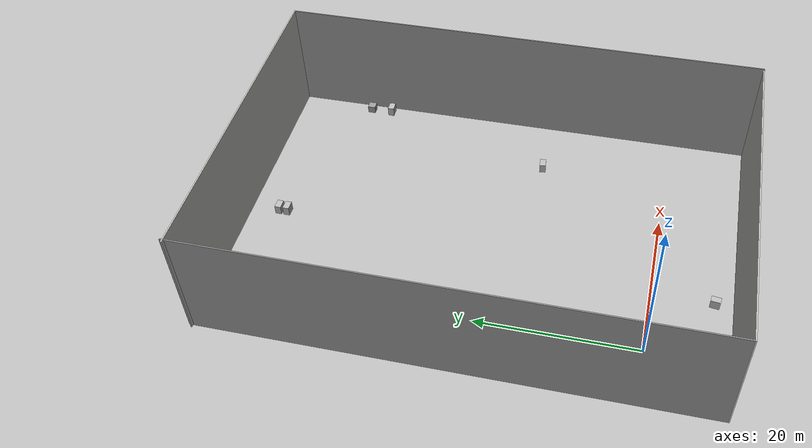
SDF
<sdf version="1.7">
 <world name="default">
  <gravity>0 0 -9.8</gravity>
  <physics name="default_physics" default="0" type="ode">
   <max_step_size>0.001</max_step_size>
   <real_time_factor>1</real_time_factor>
   <real_time_update_rate>1000</real_time_update_rate>
  </physics>
  <magnetic_field>6e-06 2.3e-05 -4.2e-05</magnetic_field>
  <atmosphere type="adiabatic"/>
  <scene><ambient>0.4 0.4 0.4 1</ambient><background>0.7 0.7 0.7 1</background><shadows>1</shadows></scene>
  <audio><device>default</device></audio>
  <spherical_coordinates>
   <surface_model>EARTH_WGS84</surface_model>
   <latitude_deg>0</latitude_deg>
   <longitude_deg>0</longitude_deg>
   <elevation>0</elevation>
   <heading_deg>0</heading_deg>
  </spherical_coordinates>
  <model name="wall">
   <pose>14.0007 21.0589 -0.288316 0 -0 0</pose>
   <link name="Wall_0">
    <collision name="Wall_0_Collision">
     <geometry><box><size>42.25 0.15 15</size></box></geometry>
     <pose>0 0 7.5 0 -0 0</pose>
    </collision>
    <visual name="Wall_0_Visual">
     <pose>0 0 7.5 0 -0 0</pose>
     <geometry><box><size>42.25 0.15 15</size></box></geometry>
     <material>
      <script><uri>file://media/materials/scripts/gazebo.material</uri><name>Gazebo/CeilingTiled</name></script>
      <ambient>0.760784 0.662745 0.627451 1</ambient>
     </material>
     <meta><layer>0</layer></meta>
    </visual>
    <pose>1e-06 -31.05 0 0 -0 3.14159</pose>
   </link>
   <link name="Wall_2">
    <collision name="Wall_2_Collision">
     <geometry><box><size>62.25 0.15 15</size></box></geometry>
     <pose>0 0 7.5 0 -0 0</pose>
    </collision>
    <visual name="Wall_2_Visual">
     <pose>0 0 7.5 0 -0 0</pose>
     <geometry><box><size>62.25 0.15 15</size></box></geometry>
     <material>
      <script><uri>file://media/materials/scripts/gazebo.material</uri><name>Gazebo/Grey</name></script>
      <ambient>1 1 1 1</ambient>
     </material>
     <meta><layer>0</layer></meta>
    </visual>
    <pose>-21.05 0 0 0 -0 1.5708</pose>
   </link>
   <static>1</static>
  </model>
  <model name="wall_0">
   <pose>13.8429 20.8537 -0.094598 0 0 -3.13197</pose>
   <link name="Wall_0">
    <collision name="Wall_0_Collision">
     <geometry><box><size>42.25 0.15 15</size></box></geometry>
     <pose>0 0 7.5 0 -0 0</pose>
    </collision>
    <visual name="Wall_0_Visual">
     <pose>0 0 7.5 0 -0 0</pose>
     <geometry><box><size>42.25 0.15 15</size></box></geometry>
     <material>
      <script><uri>file://media/materials/scripts/gazebo.material</uri><name>Gazebo/CeilingTiled</name></script>
      <ambient>0.760784 0.662745 0.627451 1</ambient>
     </material>
     <meta><layer>0</layer></meta>
    </visual>
    <pose>1e-06 -31.05 0 0 -0 3.14159</pose>
   </link>
   <link name="Wall_2">
    <collision name="Wall_2_Collision">
     <geometry><box><size>62.25 0.15 15</size></box></geometry>
     <pose>0 0 7.5 0 -0 0</pose>
    </collision>
    <visual name="Wall_2_Visual">
     <pose>0 0 7.5 0 -0 0</pose>
     <geometry><box><size>62.25 0.15 15</size></box></geometry>
     <material>
      <script><uri>file://media/materials/scripts/gazebo.material</uri><name>Gazebo/Grey</name></script>
      <ambient>1 1 1 1</ambient>
     </material>
     <meta><layer>0</layer></meta>
    </visual>
    <pose>-21.05 0 0 0 -0 1.5708</pose>
   </link>
   <static>1</static>
  </model>
  <model name="big_box3">
   <pose>-5.32892 38.022 0.704982 -2e-06 5e-06 -0.002685</pose>
   <static>0</static>
   <link name="link">
    <inertial>
     <mass>40</mass>
     <inertia><ixx>1</ixx><ixy>0</ixy><ixz>0</ixz><iyy>1</iyy><iyz>0</iyz><izz>1</izz></inertia>
    </inertial>
    <collision name="collision">
     <geometry><box><size>1.2 0.8 1.25</size></box></geometry>
     <surface><contact><ode><max_vel>0.1</max_vel><min_depth>0.001</min_depth></ode></contact></surface>
    </collision>
    <visual name="visual">
     <geometry><mesh><uri>model://big_box3/meshes/big_box.dae</uri></mesh></geometry>
    </visual>
   </link>
  </model>
  <model name="big_box3_0">
   <pose>-5.32226 40.5173 0.70498 5e-06 -4e-06 -0.024268</pose>
   <static>0</static>
   <link name="link">
    <inertial>
     <mass>40</mass>
     <inertia><ixx>1</ixx><ixy>0</ixy><ixz>0</ixz><iyy>1</iyy><iyz>0</iyz><izz>1</izz></inertia>
    </inertial>
    <collision name="collision">
     <geometry><box><size>1.2 0.8 1.25</size></box></geometry>
     <surface><contact><ode><max_vel>0.1</max_vel><min_depth>0.001</min_depth></ode></contact></surface>
    </collision>
    <visual name="visual">
     <geometry><mesh><uri>model://big_box3/meshes/big_box.dae</uri></mesh></geometry>
    </visual>
   </link>
  </model>
  <model name="big_box3_0_clone">
   <pose>12.0329 46.9931 0.704983 1e-05 1.1e-05 -0.003057</pose>
   <static>0</static>
   <link name="link">
    <inertial>
     <mass>40</mass>
     <inertia><ixx>1</ixx><ixy>0</ixy><ixz>0</ixz><iyy>1</iyy><iyz>0</iyz><izz>1</izz></inertia>
    </inertial>
    <collision name="collision">
     <geometry><box><size>1.2 0.8 1.25</size></box></geometry>
     <surface><contact><ode><max_vel>0.1</max_vel><min_depth>0.001</min_depth></ode></contact></surface>
    </collision>
    <visual name="visual">
     <geometry><mesh><uri>model://big_box3/meshes/big_box.dae</uri></mesh></geometry>
    </visual>
   </link>
  </model>
  <model name="big_box3_0_clone_0">
   <pose>12.0263 48.0629 0.704983 1.4e-05 -4e-06 -0.028735</pose>
   <static>0</static>
   <link name="link">
    <inertial>
     <mass>40</mass>
     <inertia><ixx>1</ixx><ixy>0</ixy><ixz>0</ixz><iyy>1</iyy><iyz>0</iyz><izz>1</izz></inertia>
    </inertial>
    <collision name="collision">
     <geometry><box><size>1.2 0.8 1.25</size></box></geometry>
     <surface><contact><ode><max_vel>0.1</max_vel><min_depth>0.001</min_depth></ode></contact></surface>
    </collision>
    <visual name="visual">
     <geometry><mesh><uri>model://big_box3/meshes/big_box.dae</uri></mesh></geometry>
    </visual>
   </link>
  </model>
  <model name="big_box3_0_clone_1">
   <pose>-0.92163 47.2054 0.704968 2.9e-05 8e-06 1.59146</pose>
   <static>0</static>
   <link name="link">
    <inertial>
     <mass>40</mass>
     <inertia><ixx>1</ixx><ixy>0</ixy><ixz>0</ixz><iyy>1</iyy><iyz>0</iyz><izz>1</izz></inertia>
    </inertial>
    <collision name="collision">
     <geometry><box><size>1.2 0.8 1.25</size></box></geometry>
     <surface><contact><ode><max_vel>0.1</max_vel><min_depth>0.001</min_depth></ode></contact></surface>
    </collision>
    <visual name="visual">
     <geometry><mesh><uri>model://big_box3/meshes/big_box.dae</uri></mesh></geometry>
    </visual>
   </link>
  </model>
  <light name="user_directional_light_0" type="directional">
   <pose>12.4832 17.7772 1 0 -0 0</pose>
   <diffuse>0.5 0.5 0.5 1</diffuse>
   <specular>0.1 0.1 0.1 1</specular>
   <direction>0.1 0.1 -0.9</direction>
   <attenuation>
    <range>20</range>
    <constant>0.5</constant>
    <linear>0.01</linear>
    <quadratic>0.001</quadratic>
   </attenuation>
   <spot><inner_angle>0</inner_angle><outer_angle>0</outer_angle><falloff>0</falloff></spot>
  </light>
  <light name="user_directional_light_1" type="directional">
   <pose>0.752094 44.1181 1 0 -0 0</pose>
   <diffuse>0.5 0.5 0.5 1</diffuse>
   <specular>0.1 0.1 0.1 1</specular>
   <direction>0.1 0.1 -0.9</direction>
   <attenuation>
    <range>20</range>
    <constant>0.5</constant>
    <linear>0.01</linear>
    <quadratic>0.001</quadratic>
   </attenuation>
   <spot><inner_angle>0</inner_angle><outer_angle>0</outer_angle><falloff>0</falloff></spot>
  </light>
  <light name="user_directional_light_2" type="directional">
   <pose>2.74973 8.43187 1 0 -0 0</pose>
   <diffuse>0.5 0.5 0.5 1</diffuse>
   <specular>0.1 0.1 0.1 1</specular>
   <direction>0.1 0.1 -0.9</direction>
   <attenuation>
    <range>20</range>
    <constant>0.5</constant>
    <linear>0.01</linear>
    <quadratic>0.001</quadratic>
   </attenuation>
   <spot><inner_angle>0</inner_angle><outer_angle>0</outer_angle><falloff>0</falloff></spot>
  </light>
  <light name="user_directional_light_3" type="directional">
   <pose>21.507 10.72 1 0 -0 0</pose>
   <diffuse>0.5 0.5 0.5 1</diffuse>
   <specular>0.1 0.1 0.1 1</specular>
   <direction>0.1 0.1 -0.9</direction>
   <attenuation>
    <range>20</range>
    <constant>0.5</constant>
    <linear>0.01</linear>
    <quadratic>0.001</quadratic>
   </attenuation>
   <spot><inner_angle>0</inner_angle><outer_angle>0</outer_angle><falloff>0</falloff></spot>
  </light>
  <light name="user_directional_light_4" type="directional">
   <pose>21.8425 42.1609 1 0 -0 0</pose>
   <diffuse>0.5 0.5 0.5 1</diffuse>
   <specular>0.1 0.1 0.1 1</specular>
   <direction>0.1 0.1 -0.9</direction>
   <attenuation>
    <range>20</range>
    <constant>0.5</constant>
    <linear>0.01</linear>
    <quadratic>0.001</quadratic>
   </attenuation>
   <spot><inner_angle>0</inner_angle><outer_angle>0</outer_angle><falloff>0</falloff></spot>
  </light>
  <light name="user_directional_light_5" type="directional">
   <pose>-1.34759 41.1381 1 0 -0 0</pose>
   <diffuse>0.5 0.5 0.5 1</diffuse>
   <specular>0.1 0.1 0.1 1</specular>
   <direction>0.1 0.1 -0.9</direction>
   <attenuation>
    <range>20</range>
    <constant>0.5</constant>
    <linear>0.01</linear>
    <quadratic>0.001</quadratic>
   </attenuation>
   <spot><inner_angle>0</inner_angle><outer_angle>0</outer_angle><falloff>0</falloff></spot>
  </light>
  <model name="big_box3_clone">
   <pose>-0.899428 16.0461 0.704978 -4e-06 -4e-06 0.132246</pose>
   <static>0</static>
   <link name="link">
    <inertial>
     <mass>40</mass>
     <inertia><ixx>1</ixx><ixy>0</ixy><ixz>0</ixz><iyy>1</iyy><iyz>0</iyz><izz>1</izz></inertia>
    </inertial>
    <collision name="collision">
     <geometry><box><size>1.2 0.8 1.25</size></box></geometry>
     <surface><contact><ode><max_vel>0.1</max_vel><min_depth>0.001</min_depth></ode></contact></surface>
    </collision>
    <visual name="visual">
     <geometry><mesh><uri>model://big_box3/meshes/big_box.dae</uri></mesh></geometry>
    </visual>
   </link>
  </model>
  <model name="big_box3_clone_clone">
   <pose>26.6133 16.2355 0.704981 -1e-06 9e-06 0.127586</pose>
   <static>0</static>
   <link name="link">
    <inertial>
     <mass>40</mass>
     <inertia><ixx>1</ixx><ixy>0</ixy><ixz>0</ixz><iyy>1</iyy><iyz>0</iyz><izz>1</izz></inertia>
    </inertial>
    <collision name="collision">
     <geometry><box><size>1.2 0.8 1.25</size></box></geometry>
     <surface><contact><ode><max_vel>0.1</max_vel><min_depth>0.001</min_depth></ode></contact></surface>
    </collision>
    <visual name="visual">
     <geometry><mesh><uri>model://big_box3/meshes/big_box.dae</uri></mesh></geometry>
    </visual>
   </link>
  </model>
  <model name="big_box3_0_clone_1_clone">
   <pose>8.14632 -7.63259 0.704982 -6e-06 -1e-05 -1.70237</pose>
   <static>0</static>
   <link name="link">
    <inertial>
     <mass>40</mass>
     <inertia><ixx>1</ixx><ixy>0</ixy><ixz>0</ixz><iyy>1</iyy><iyz>0</iyz><izz>1</izz></inertia>
    </inertial>
    <collision name="collision">
     <geometry><box><size>1.2 0.8 1.25</size></box></geometry>
     <surface><contact><ode><max_vel>0.1</max_vel><min_depth>0.001</min_depth></ode></contact></surface>
    </collision>
    <visual name="visual">
     <geometry><mesh><uri>model://big_box3/meshes/big_box.dae</uri></mesh></geometry>
    </visual>
   </link>
  </model>
  <light name="user_directional_light_6" type="directional">
   <pose>7.56459 -6.37239 1 0 -0 0</pose>
   <diffuse>0.5 0.5 0.5 1</diffuse>
   <specular>0.1 0.1 0.1 1</specular>
   <direction>0.1 0.1 -0.9</direction>
   <attenuation>
    <range>20</range>
    <constant>0.5</constant>
    <linear>0.01</linear>
    <quadratic>0.001</quadratic>
   </attenuation>
   <spot><inner_angle>0</inner_angle><outer_angle>0</outer_angle><falloff>0</falloff></spot>
  </light>
  <model name="big_box3_clone_0">
   <pose>-5.43328 33.4406 0.704976 -3e-06 7e-06 3.08729</pose>
   <static>0</static>
   <link name="link">
    <inertial>
     <mass>40</mass>
     <inertia><ixx>1</ixx><ixy>0</ixy><ixz>0</ixz><iyy>1</iyy><iyz>0</iyz><izz>1</izz></inertia>
    </inertial>
    <collision name="collision">
     <geometry><box><size>1.2 0.8 1.25</size></box></geometry>
     <surface><contact><ode><max_vel>0.1</max_vel><min_depth>0.001</min_depth></ode></contact></surface>
    </collision>
    <visual name="visual">
     <geometry><mesh><uri>model://big_box3/meshes/big_box.dae</uri></mesh></geometry>
    </visual>
   </link>
  </model>
  <model name="unit_box">
   <pose>-5.52795 36.1751 0.579973 -2e-06 1.9e-05 -0.000531</pose>
   <link name="link">
    <inertial>
     <mass>1</mass>
     <inertia>
      <ixx>0.166667</ixx>
      <ixy>0</ixy>
      <ixz>0</ixz>
      <iyy>0.166667</iyy>
      <iyz>0</iyz>
      <izz>0.166667</izz>
     </inertia>
    </inertial>
    <collision name="collision"><geometry><box><size>1 1 1</size></box></geometry></collision>
    <visual name="visual">
     <geometry><box><size>1 1 1</size></box></geometry>
     <material>
      <script><name>Gazebo/Grey</name><uri>file://media/materials/scripts/gazebo.material</uri></script>
     </material>
    </visual>
   </link>
  </model>
  <model name="big_box3_0_clone_clone">
   <pose>33.4349 39.1792 0.70498 4e-06 -1e-06 -0.003382</pose>
   <static>0</static>
   <link name="link">
    <inertial>
     <mass>40</mass>
     <inertia><ixx>1</ixx><ixy>0</ixy><ixz>0</ixz><iyy>1</iyy><iyz>0</iyz><izz>1</izz></inertia>
    </inertial>
    <collision name="collision">
     <geometry><box><size>1.2 0.8 1.25</size></box></geometry>
     <surface><contact><ode><max_vel>0.1</max_vel><min_depth>0.001</min_depth></ode></contact></surface>
    </collision>
    <visual name="visual">
     <geometry><mesh><uri>model://big_box3/meshes/big_box.dae</uri></mesh></geometry>
    </visual>
   </link>
  </model>
  <model name="unit_box_0">
   <pose>33.3753 42.0497 0.579982 0 -0 0.000137</pose>
   <link name="link">
    <inertial>
     <mass>1</mass>
     <inertia>
      <ixx>0.166667</ixx>
      <ixy>0</ixy>
      <ixz>0</ixz>
      <iyy>0.166667</iyy>
      <iyz>0</iyz>
      <izz>0.166667</izz>
     </inertia>
    </inertial>
    <collision name="collision"><geometry><box><size>1 1 1</size></box></geometry></collision>
    <visual name="visual">
     <geometry><box><size>1 1 1</size></box></geometry>
     <material>
      <script><name>Gazebo/Grey</name><uri>file://media/materials/scripts/gazebo.material</uri></script>
     </material>
    </visual>
   </link>
  </model>
 </world>
</sdf>
